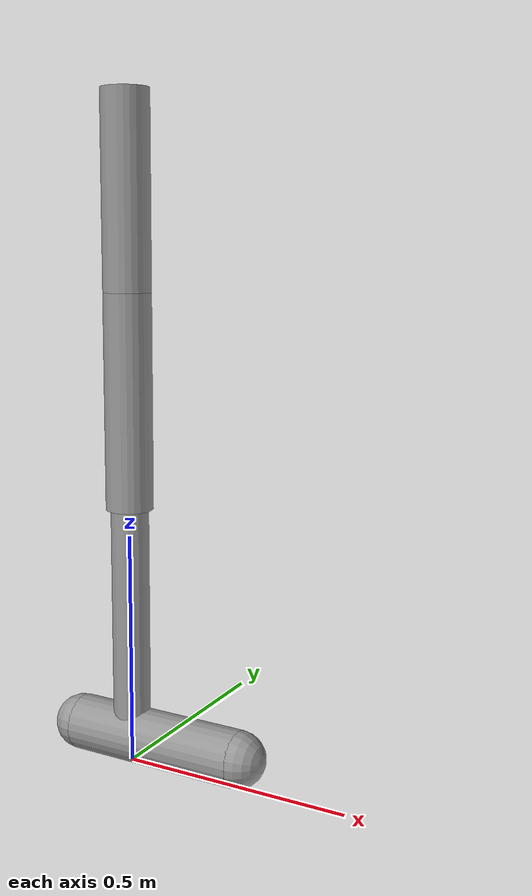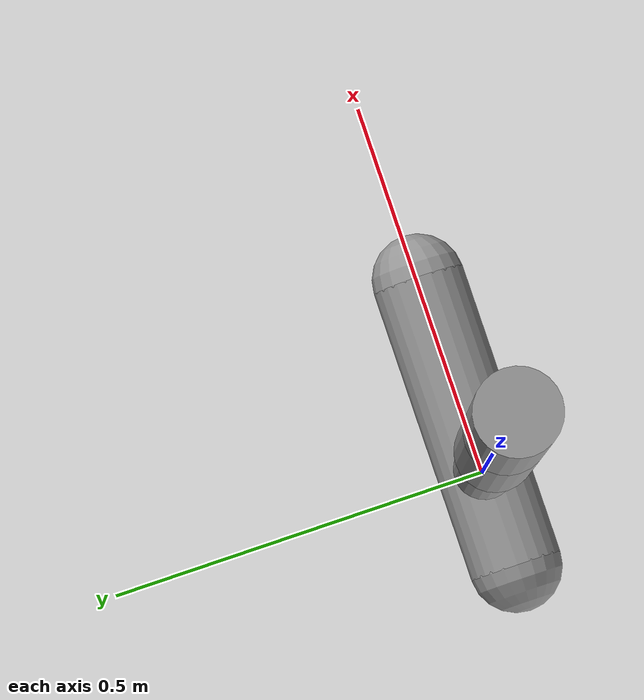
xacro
<?xml version="1.0"?>
<robot xmlns:xacro="http://www.ros.org/wiki/xacro" name="hopper">

  <material name="red">
    <color rgba="1 0 0 1"/>
  </material>
  <material name="green">
  <color rgba="0 1 0 1"/>
  </material>
  <material name="blue">
    <color rgba="0 0 1 1"/>
  </material>

  <xacro:macro name="default_inertial" params="mass">
    <inertial>
            <mass value="${mass}" />
            <inertia ixx="0.01" ixy="0.0" ixz="0.0"
                     iyy="0.01" iyz="0.0"
                     izz="0.01" />
    </inertial>
  </xacro:macro>

  <xacro:property name="torso_length" value="0.4" />
  <xacro:property name="torso_radius" value="0.05" />

  <xacro:property name="thigh_length" value="0.45" />
  <xacro:property name="thigh_radius" value="0.05" />
  <xacro:property name="thigh_position" value="0 0 -${thigh_length/2.0}" /> <!--object position relative to the torso joint -->
  <xacro:property name="thigh_orientation" value="0 0 0" />

  <xacro:property name="leg_length" value="0.50" />
  <xacro:property name="leg_radius" value="0.04" />
  <xacro:property name="leg_position" value="0 0 -${leg_length/2}" />
  <xacro:property name="leg_orientation" value="0 0 0" />

  <xacro:property name="foot_length" value="0.39" />
  <xacro:property name="foot_radius" value="0.06" />
  <xacro:property name="foot_position_x" value="${foot_length/6}" />
  <xacro:property name="foot_position_y" value="0" />
  <xacro:property name="foot_position_z" value="0" />
  <xacro:property name="foot_orientation" value="0 1.570795 0" />

  <xacro:property name="max_effort" value="1000" />

  <xacro:property name="spawn_height" value="0.001" />
  <xacro:property name="gear" value="200" />
  <xacro:property name="friction_coefficient" value="1" />

  <xacro:property name="density" value="1000" /> <!-- water density -->
  <xacro:property name="foot_mass"  value="${foot_radius*foot_radius*3.14159   * foot_length  * density}" />
  <xacro:property name="leg_mass"   value="${leg_radius*leg_radius*3.14159     * leg_length   * density}" />
  <xacro:property name="thigh_mass" value="${thigh_radius*thigh_radius*3.14159 * thigh_length * density}" />
  <xacro:property name="torso_mass" value="${torso_radius*torso_radius*3.14159 * torso_length * density}" />

  <xacro:macro name="cylinder_z_inertia_matrix" params="mass height radius ">
    <inertia ixx="${1/12.0 * mass * (3*radius*radius + height*height)}" ixy="0.0"  ixz="0.0"
             iyy="${1/12.0 * mass * (3*radius*radius + height*height)}" iyz="0.0"
             izz="${1/12.0 * mass * radius*radius}" />
  </xacro:macro>

  <link name="world"/>

  <link name="torso">
    <visual>
      <geometry>
        <cylinder length="${torso_length}" radius="${torso_radius}"/>
      </geometry>
    </visual>
    <collision>
      <geometry>
        <cylinder length="${torso_length}" radius="${torso_radius}"/>
      </geometry>
    </collision>
    <inertial>
      <mass value="${torso_mass}"/>
      <xacro:cylinder_z_inertia_matrix mass="${torso_mass}" height="${torso_length}" radius="${torso_radius}"/>
    </inertial>
  </link>
  <gazebo reference="torso">
    <material>Gazebo/Grey</material>
  </gazebo>

  <!-- We contrain the hopper to stay on the xz plane -->
  <!-- Gazebo does not support a planar joint, so we use two prismatic joints chained together -->
  <!-- We must also allow the torso link to rotate around the y axis, we use a continuous joint -->
  <link name="mid"> <!-- Link used to chain the two prismatic joints together -->
    <inertial> <!-- gazebo requires inertia to be specified -->
            <mass value="0.0001" /> <!-- gazebo requires mass to be specified -->
            <inertia ixx="0.0" ixy="0.0" ixz="0.0"
                     iyy="0.0" iyz="0.0"
                     izz="0.0" />
    </inertial>
  </link>
  <link name="mid2"> <!-- link used between the second prismatic joint and the continuous joint -->
    <inertial>
            <mass value="0.0001" />
            <inertia ixx="0.0" ixy="0.0" ixz="0.0"
                     iyy="0.0" iyz="0.0"
                     izz="0.0" />
    </inertial>
  </link>
  <joint name="torso_x_slider" type="prismatic">
    <origin xyz="0 0 0" rpy="0 0 0" />
    <axis xyz="1 0 0" rpy="0 0 0" />
    <parent link="world"/>
    <child link="mid"/>
    <limit effort="10000" lower="-1" upper="1000" velocity="10000"/>
  </joint>
  <joint name="torso_z_slider" type="prismatic">
    <origin xyz="0 0 ${torso_length/2 + thigh_length + leg_length + foot_radius + spawn_height}" rpy="0 0 0" />
    <axis xyz="0 0 1" rpy="0 0 0" />
    <parent link="mid"/>
    <child link="mid2"/>
    <limit effort="10000" lower="-10" upper="1000" velocity="10000"/>
  </joint>
  <joint name="torso_pitch_joint" type="continuous">
    <origin xyz="0.0 0.0 0" rpy="0 0 0" /> <!-- joint pose in the parent frame-->
    <axis xyz="0 1 0" rpy="0 0 0" />
    <parent link="mid2"/>
    <child link="torso"/>
  </joint>

  <link name="thigh">
    <visual>
      <geometry>
        <cylinder length="${thigh_length}" radius="${thigh_radius}"/>
      </geometry>
      <origin xyz="${thigh_position}" rpy="${thigh_orientation}" />
    </visual>
    <collision>
      <geometry>
        <cylinder length="${thigh_length}" radius="${thigh_radius}"/>
      </geometry>
      <origin xyz="${thigh_position}" rpy="${thigh_orientation}" />
    </collision>
    <inertial>
      <origin xyz="${thigh_position}" rpy="${thigh_orientation}" />
      <mass value="${thigh_mass}"/>
      <xacro:cylinder_z_inertia_matrix mass="${thigh_mass}" height="${thigh_length}" radius="${thigh_radius}"/>
    </inertial>
  </link>
  <gazebo reference="thigh">
    <material>Gazebo/Grey</material>
  </gazebo>
  <joint name="torso_to_thigh" type="revolute">
    <origin xyz="0.0 0.0 -${torso_length/2.0}" rpy="0 0 0" /> <!-- joint pose in the parent frame-->
    <axis xyz="0 1 0" rpy="0 0 0" />
    <parent link="torso"/>
    <child link="thigh"/>
    <limit effort="${max_effort}" lower="0.0" upper="2.617991667" velocity="10000"/>
  </joint>
  <transmission name="torso_to_thigh_tran">
    <type>transmission_interface/SimpleTransmission</type> <!-- Use a simple reducer transmission -->
    <joint name="torso_to_thigh">
      <hardwareInterface>hardware_interface/EffortJointInterface</hardwareInterface> <!-- Use an effort interface to control this joint (which is controlled through the actuator specified next) -->
    </joint>
    <actuator name="torso_to_thigh_actuator">
      <mechanicalReduction>${gear}</mechanicalReduction> <!-- gear reduction for the joint -->
    </actuator>
  </transmission>

  <link name="leg">
    <visual>
      <geometry>
        <cylinder length="${leg_length}" radius="${leg_radius}"/>
      </geometry>
      <origin xyz="${leg_position}" rpy="${leg_orientation}" />
    </visual>
    <collision>
      <geometry>
        <cylinder length="${leg_length}" radius="${leg_radius}"/>
      </geometry>
      <origin xyz="${leg_position}" rpy="${leg_orientation}" />
    </collision>
    <inertial>
      <origin xyz="${leg_position}" rpy="${leg_orientation}" />
      <mass value="${leg_mass}"/>
      <xacro:cylinder_z_inertia_matrix mass="${leg_mass}" height="${leg_length}" radius="${leg_radius}"/>
    </inertial>
  </link>
  <gazebo reference="leg">
    <material>Gazebo/Grey</material>
  </gazebo>
  <joint name="thigh_to_leg" type="revolute">
    <origin xyz="0.0 0.0 -${thigh_length}" rpy="0 0 0" />
    <parent link="thigh"/>
    <child link="leg"/>
    <axis xyz="0 1 0" rpy="0 0 0" />
    <limit effort="${max_effort}" lower="0.0" upper="2.617991667" velocity="10000"/>
  </joint>
  <transmission name="thigh_to_leg_tran">
    <type>transmission_interface/SimpleTransmission</type> <!-- Use a simple reducer transmission -->
    <joint name="thigh_to_leg">
      <hardwareInterface>hardware_interface/EffortJointInterface</hardwareInterface> <!-- Use an effort interface to control this joint (which is controlled through the actuator specified next) -->
    </joint>
    <actuator name="thigh_to_leg_actuator">
      <mechanicalReduction>${gear}</mechanicalReduction> <!-- gear reduction for the joint -->
    </actuator>
  </transmission>

  <link name="foot">
    <contact> <!-- PyBullet's way of specifying friction -->
        <lateral_friction value="${friction_coefficient}"/>
    </contact>
    <visual>
      <origin xyz="${foot_position_x} ${foot_position_y} ${foot_position_z}" rpy="${foot_orientation}" />
      <geometry>
        <cylinder length="${foot_length}" radius="${foot_radius}" />
      </geometry>
    </visual>
    <visual>
      <origin xyz="${foot_position_x + foot_length/2} ${foot_position_y} ${foot_position_z}" rpy="${foot_orientation}" />
      <geometry>
        <sphere radius="${foot_radius}" />
      </geometry>
    </visual>
    <visual>
      <origin xyz="${foot_position_x - foot_length/2} ${foot_position_y} ${foot_position_z}" rpy="${foot_orientation}" />
      <geometry>
        <sphere radius="${foot_radius}" />
      </geometry>
    </visual>

    <collision>
      <origin xyz="${foot_position_x} ${foot_position_y} ${foot_position_z}" rpy="${foot_orientation}" />
      <geometry>
        <cylinder length="${foot_length}" radius="${foot_radius}" />
      </geometry>
    </collision>
    <collision>
      <origin xyz="${foot_position_x + foot_length/2} ${foot_position_y} ${foot_position_z}" rpy="${foot_orientation}" />
      <geometry>
        <sphere radius="${foot_radius}" />
      </geometry>
    </collision>
    <collision>
      <origin xyz="${foot_position_x - foot_length/2} ${foot_position_y} ${foot_position_z}" rpy="${foot_orientation}" />
      <geometry>
        <sphere radius="${foot_radius}" />
      </geometry>
    </collision>

    <inertial>
      <origin xyz="${foot_position_x} ${foot_position_y} ${foot_position_z}" rpy="${foot_orientation}" />
      <mass value="${foot_mass}"/>
      <xacro:cylinder_z_inertia_matrix mass="${foot_mass}" height="${foot_length}" radius="${foot_radius}"/>
    </inertial>
  </link>
  <gazebo reference="foot">
    <material>Gazebo/Grey</material>

    <collision name="collision">
      <geometry>
        <plane>
          <normal>0 0 1</normal>
          <size>100 100</size>
        </plane>
      </geometry>
      <surface>
        <contact>
          <ode>
            <kp>2e+05</kp>
            <kd>80</kd>
            <!-- Equivalent to CFM = 10e-2, ERP = 0.2, with step size = 10^-3,
                See http://www.ode.org/ode-latest-userguide.html#sec_3_8_2 -->
            <soft_cfm>0.01</soft_cfm>
            <soft_erp>0.2</soft_erp>
          </ode>
          <bullet>
            <kp>2e+05</kp>
            <kd>80</kd>
            <!-- Equivalent to CFM = 10e-2, ERP = 0.2, with step size = 10^-3,
                See http://www.ode.org/ode-latest-userguide.html#sec_3_8_2 -->
            <soft_cfm>0.01</soft_cfm>
            <soft_erp>0.2</soft_erp>
          </bullet>
        </contact>
        <friction>
          <torsional>
            <coefficient>0.5</coefficient>
          </torsional>
          <ode>  <!-- gazebo reads the ode tag even for bullet, see https://github.com/osrf/gazebo/blob/gazebo9/gazebo/physics/bullet/BulletSurfaceParams.cc -->
            <mu>1</mu>
            <mu2>1</mu2>
          </ode>
          <bullet>
            <friction>1</friction>
            <friction2>1</friction2>
          </bullet>
        </friction>
      </surface>
    </collision>
  </gazebo>
  <joint name="leg_to_foot" type="revolute">
    <origin xyz="0 0 ${-leg_length}" rpy="0 0 0" />
    <parent link="leg"/>
    <child link="foot"/>
    <axis xyz="0 1 0" rpy="0 0 0" />
    <limit effort="${max_effort}" lower="-0.7853975" upper="0.7853975" velocity="100"/>
  </joint>
  <transmission name="leg_to_foot_tran">
    <type>transmission_interface/SimpleTransmission</type> <!-- Use a simple reducer transmission -->
    <joint name="leg_to_foot">
      <hardwareInterface>hardware_interface/EffortJointInterface</hardwareInterface> <!-- Use an effort interface to control this joint (which is controlled through the actuator specified next) -->
    </joint>
    <actuator name="leg_to_foot_actuator">
      <mechanicalReduction>${gear}</mechanicalReduction> <!-- gear reduction for the joint -->
    </actuator>
  </transmission>

  <link name="camera_link"/>
  <joint name="camera_joint" type="fixed">
    <origin xyz="0 -2.5 0.75" rpy="0 0 1.5707" />
    <parent link="mid"/>
    <child link="camera_link"/>
  </joint>
  <gazebo reference="camera_link">
    <self_collide>0</self_collide>
    <enable_wind>0</enable_wind>
    <kinematic>0</kinematic>
    <enable_gravity>false</enable_gravity>

    <sensor name="camera" type="camera">
        <camera name="camera">
            <horizontal_fov>${69.4*3.14159/180}</horizontal_fov>
            <image>
                <width>$(arg camera_width)</width>
                <height>$(arg camera_height)</height>
                <format>RGB_INT8</format>
            </image>
            <clip>
                <near>0.01</near>
                <far>100</far>
            </clip>
        </camera>
        <plugin name="camera/camera_controller" filename="libgazebo_ros_camera.so">
            <cameraName>camera</cameraName>
            <frameName>camera_optical_frame</frameName>
            <updateRate>60</updateRate>
        </plugin>
        <always_on>true</always_on>
        <update_rate>60</update_rate>
        <visualize>0</visualize>
    </sensor>
  </gazebo>

</robot>
